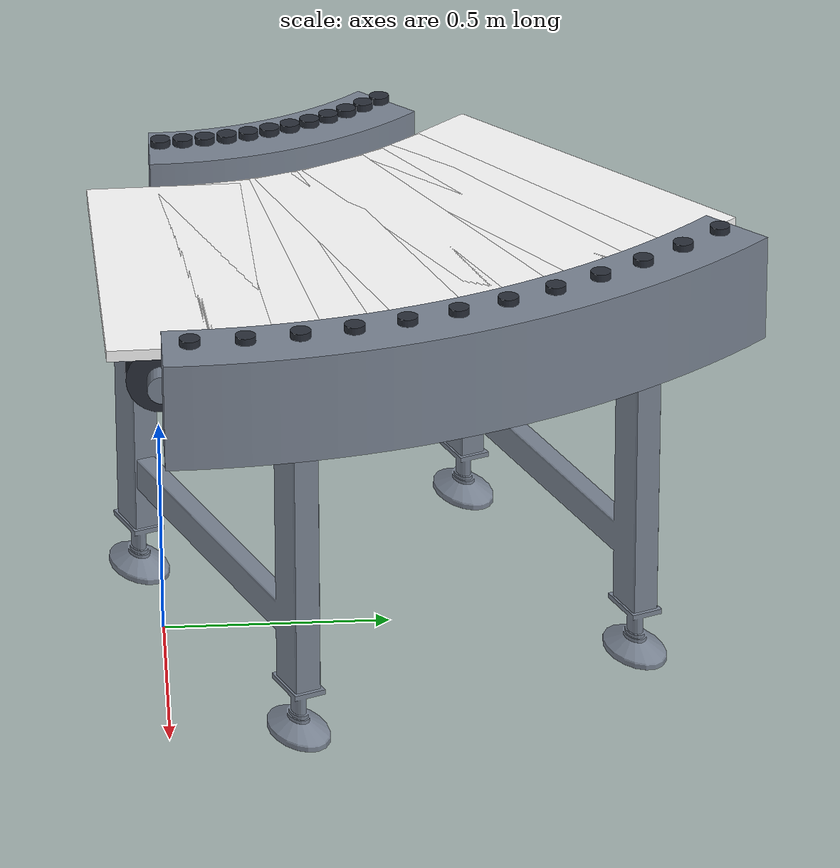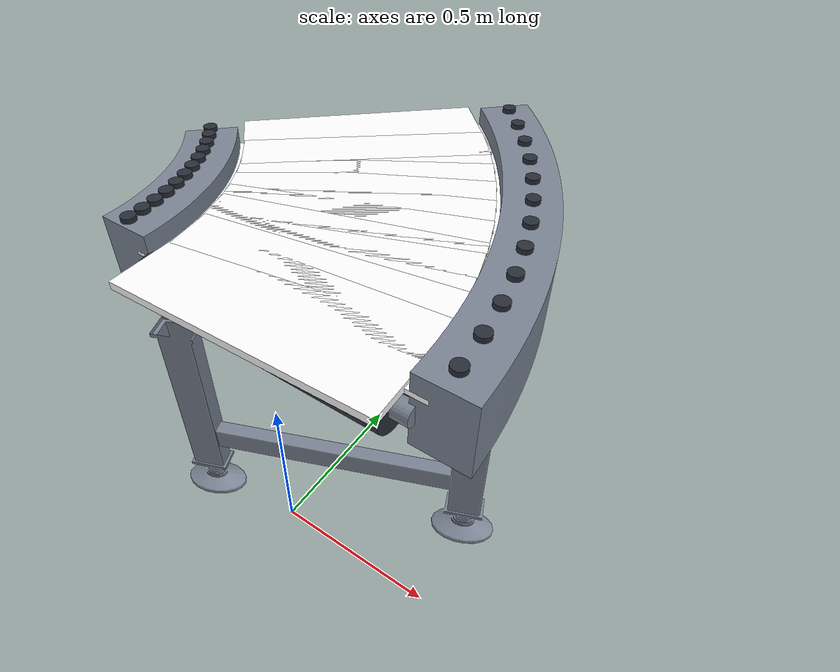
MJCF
<mujoco model="conveyor_curve_left_45">
  <!-- Generated by generate.mjs. Edit the generator rather than this file. -->
  <compiler angle="radian" meshdir="meshes" texturedir="textures"/>
  <option timestep="0.002"/>

  <asset>
    <material name="conveyor_frame_mat" rgba="0.48 0.52 0.58 1" metallic="0.72" roughness="0.28"/>
    <material name="conveyor_hardware_mat" rgba="0.16 0.18 0.22 1" metallic="0.82" roughness="0.24"/>
    <texture name="belt_color" type="2d" file="rubber-color.png"/>
    <texture name="belt_normal" type="2d" file="rubber-normal.png"/>
    <texture name="belt_roughness" type="2d" file="rubber-roughness.png"/>
    <material name="conveyor_belt_mat" rgba="1 1 1 1" metallic="0" roughness="1">
      <layer role="rgb" texture="belt_color"/>
      <layer role="normal" texture="belt_normal"/>
      <layer role="roughness" texture="belt_roughness"/>
    </material>
    <mesh name="conveyor_curve_inner_rail_visual" file="curve-left-45-inner-rail.obj" inertia="shell"/>
    <mesh name="conveyor_curve_outer_rail_visual" file="curve-left-45-outer-rail.obj" inertia="shell"/>
    <mesh name="conveyor_curve_belt_underlay_visual" file="curve-left-45-belt-underlay.obj" inertia="shell"/>
    <mesh name="conveyor_curve_belt_tile" file="belt-curve-tile.obj" inertia="shell"/>
    <mesh name="conveyor_curve_belt_end_tile" file="belt-curve-end-tile.obj" inertia="shell"/>
    <mesh name="conveyor_curve_support_visual"
          file="curve-support-short.obj" inertia="shell"/>
  </asset>

  <worldbody>
    <body name="conveyor_curve_left_45" pos="0 0 0">
      <!-- The incoming connection is centered at the origin and points along local +Y. -->
      <geom name="conveyor_curve_belt_underlay_visual" type="mesh" mesh="conveyor_curve_belt_underlay_visual"
            material="conveyor_belt_mat" group="1" contype="0" conaffinity="0" mass="0"/>
      <geom name="conveyor_curve_inner_rail_visual" type="mesh" mesh="conveyor_curve_inner_rail_visual"
            material="conveyor_frame_mat" group="1" contype="0" conaffinity="0" mass="0"/>
      <geom name="conveyor_curve_outer_rail_visual" type="mesh" mesh="conveyor_curve_outer_rail_visual"
            material="conveyor_frame_mat" group="1" contype="0" conaffinity="0" mass="0"/>
      <!-- Connection frames use local +Y as belt travel for drag-to-attach placement. -->
      <site name="attachment_site" pos="0 0 0.88" xyaxes="1 0 0 0 1 0" size="0.035" group="4"/>
      <site name="attachment_site_outlet" pos="-0.366116524 0.883883476 0.88"
            xyaxes="0.707106781 0.707106781 0 -0.707106781 0.707106781 0" size="0.035" group="4"/>

      <!-- Driven roller and end caps make each curve interface read as a real conveyor transition. -->
      <geom name="conveyor_curve_inlet_roller" type="cylinder" fromto="-0.405 0 0.81 0.405 0 0.81" size="0.075"
            material="conveyor_hardware_mat" group="1" contype="0" conaffinity="0" mass="0"/>
      <geom name="conveyor_curve_inlet_roller_caps" type="cylinder" fromto="-0.455 0 0.81 0.455 0 0.81" size="0.031"
            material="conveyor_frame_mat" group="1" contype="0" conaffinity="0" mass="0"/>
      <!-- Driven roller and end caps make each curve interface read as a real conveyor transition. -->
      <geom name="conveyor_curve_outlet_roller" type="cylinder" fromto="-0.639769393 0.610230607 0.81 -0.067012901 1.182987099 0.81" size="0.075"
            material="conveyor_hardware_mat" group="1" contype="0" conaffinity="0" mass="0"/>
      <geom name="conveyor_curve_outlet_roller_caps" type="cylinder" fromto="-0.675124732 0.574875268 0.81 -0.031657562 1.218342438 0.81" size="0.031"
            material="conveyor_frame_mat" group="1" contype="0" conaffinity="0" mass="0"/>

      <!-- Reuse the straight conveyor's finished, adjustable-leg support assembly. -->
      <geom name="conveyor_curve_support_visual" type="mesh" mesh="conveyor_curve_support_visual"
            pos="-0.078524079 0.485241215 0" quat="0.98078528 0 0 0.195090322" material="conveyor_frame_mat"
            group="1" contype="0" conaffinity="0" mass="0"/>

      <!-- Fasteners along both guard rails give the curve the same manufactured detail as the straight modules. -->
      <geom name="conveyor_curve_inner_fastener_0" type="cylinder" pos="-0.487412118 0.024964542 0.955" size="0.022 0.008"
            material="conveyor_hardware_mat" group="1" contype="0" conaffinity="0" mass="0"/>
      <geom name="conveyor_curve_outer_fastener_0" type="cylinder" pos="0.522047116 0.058010816 0.955" size="0.022 0.008"
            material="conveyor_hardware_mat" group="1" contype="0" conaffinity="0" mass="0"/>
      <geom name="conveyor_curve_inner_fastener_1" type="cylinder" pos="-0.490677636 0.074786725 0.955" size="0.022 0.008"
            material="conveyor_hardware_mat" group="1" contype="0" conaffinity="0" mass="0"/>
      <geom name="conveyor_curve_outer_fastener_1" type="cylinder" pos="0.514458938 0.173784037 0.955" size="0.022 0.008"
            material="conveyor_hardware_mat" group="1" contype="0" conaffinity="0" mass="0"/>
      <geom name="conveyor_curve_inner_fastener_2" type="cylinder" pos="-0.49719469 0.12428866 0.955" size="0.022 0.008"
            material="conveyor_hardware_mat" group="1" contype="0" conaffinity="0" mass="0"/>
      <geom name="conveyor_curve_outer_fastener_2" type="cylinder" pos="0.499315076 0.288813088 0.955" size="0.022 0.008"
            material="conveyor_hardware_mat" group="1" contype="0" conaffinity="0" mass="0"/>
      <geom name="conveyor_curve_inner_fastener_3" type="cylinder" pos="-0.506935371 0.173258371 0.955" size="0.022 0.008"
            material="conveyor_hardware_mat" group="1" contype="0" conaffinity="0" mass="0"/>
      <geom name="conveyor_curve_outer_fastener_3" type="cylinder" pos="0.476680378 0.402605397 0.955" size="0.022 0.008"
            material="conveyor_hardware_mat" group="1" contype="0" conaffinity="0" mass="0"/>
      <geom name="conveyor_curve_inner_fastener_4" type="cylinder" pos="-0.519857969 0.221486164 0.955" size="0.022 0.008"
            material="conveyor_hardware_mat" group="1" contype="0" conaffinity="0" mass="0"/>
      <geom name="conveyor_curve_outer_fastener_4" type="cylinder" pos="0.44665177 0.514673688 0.955" size="0.022 0.008"
            material="conveyor_hardware_mat" group="1" contype="0" conaffinity="0" mass="0"/>
      <geom name="conveyor_curve_inner_fastener_5" type="cylinder" pos="-0.535907147 0.268765518 0.955" size="0.022 0.008"
            material="conveyor_hardware_mat" group="1" contype="0" conaffinity="0" mass="0"/>
      <geom name="conveyor_curve_outer_fastener_5" type="cylinder" pos="0.409357839 0.624538067 0.955" size="0.022 0.008"
            material="conveyor_hardware_mat" group="1" contype="0" conaffinity="0" mass="0"/>
      <geom name="conveyor_curve_inner_fastener_6" type="cylinder" pos="-0.555014181 0.314893978 0.955" size="0.022 0.008"
            material="conveyor_hardware_mat" group="1" contype="0" conaffinity="0" mass="0"/>
      <geom name="conveyor_curve_outer_fastener_6" type="cylinder" pos="0.364958282 0.731728078 0.955" size="0.022 0.008"
            material="conveyor_hardware_mat" group="1" contype="0" conaffinity="0" mass="0"/>
      <geom name="conveyor_curve_inner_fastener_7" type="cylinder" pos="-0.57709725 0.359674013 0.955" size="0.022 0.008"
            material="conveyor_hardware_mat" group="1" contype="0" conaffinity="0" mass="0"/>
      <geom name="conveyor_curve_outer_fastener_7" type="cylinder" pos="0.313643227 0.835784717 0.955" size="0.022 0.008"
            material="conveyor_hardware_mat" group="1" contype="0" conaffinity="0" mass="0"/>
      <geom name="conveyor_curve_inner_fastener_8" type="cylinder" pos="-0.602061793 0.402913869 0.955" size="0.022 0.008"
            material="conveyor_hardware_mat" group="1" contype="0" conaffinity="0" mass="0"/>
      <geom name="conveyor_curve_outer_fastener_8" type="cylinder" pos="0.255632411 0.936262398 0.955" size="0.022 0.008"
            material="conveyor_hardware_mat" group="1" contype="0" conaffinity="0" mass="0"/>
      <geom name="conveyor_curve_inner_fastener_9" type="cylinder" pos="-0.629800906 0.444428386 0.955" size="0.022 0.008"
            material="conveyor_hardware_mat" group="1" contype="0" conaffinity="0" mass="0"/>
      <geom name="conveyor_curve_outer_fastener_9" type="cylinder" pos="0.191174246 1.03273086 0.955" size="0.022 0.008"
            material="conveyor_hardware_mat" group="1" contype="0" conaffinity="0" mass="0"/>
      <geom name="conveyor_curve_inner_fastener_10" type="cylinder" pos="-0.660195807 0.484039792 0.955" size="0.022 0.008"
            material="conveyor_hardware_mat" group="1" contype="0" conaffinity="0" mass="0"/>
      <geom name="conveyor_curve_outer_fastener_10" type="cylinder" pos="0.120544751 1.124777009 0.955" size="0.022 0.008"
            material="conveyor_hardware_mat" group="1" contype="0" conaffinity="0" mass="0"/>
      <geom name="conveyor_curve_inner_fastener_11" type="cylinder" pos="-0.69311634 0.521578466 0.955" size="0.022 0.008"
            material="conveyor_hardware_mat" group="1" contype="0" conaffinity="0" mass="0"/>
      <geom name="conveyor_curve_outer_fastener_11" type="cylinder" pos="0.044046373 1.212006691 0.955" size="0.022 0.008"
            material="conveyor_hardware_mat" group="1" contype="0" conaffinity="0" mass="0"/>

      <!-- Overlapping tangent boxes approximate stable curved frame and rail collision. -->
      <geom name="conveyor_curve_frame_collision_0" type="box"
            pos="0.017317499 0.041487679 0.35" quat="0.999866138 0 0 0.016361732"
            size="0.52 0.085235363 0.35" group="3" rgba="0 0 0 0" contype="1" conaffinity="0" density="31.5085"/>
      <geom name="conveyor_curve_inner_rail_collision_0" type="box"
            pos="-0.492409441 0.024800947 0.82" quat="0.999866138 0 0 0.016361732"
            size="0.09 0.085235363 0.12" group="3" rgba="0 0 0 0" contype="1" conaffinity="0" density="31.5085"/>
      <geom name="conveyor_curve_outer_rail_collision_0" type="box"
            pos="0.527044438 0.058174411 0.82" quat="0.999866138 0 0 0.016361732"
            size="0.09 0.085235363 0.12" group="3" rgba="0 0 0 0" contype="1" conaffinity="0" density="31.5085"/>
      <geom name="conveyor_curve_frame_collision_1" type="box"
            pos="0.011890651 0.124285381 0.35" quat="0.998795456 0 0 0.049067674"
            size="0.52 0.085235363 0.35" group="3" rgba="0 0 0 0" contype="1" conaffinity="0" density="31.5085"/>
      <geom name="conveyor_curve_inner_rail_collision_1" type="box"
            pos="-0.49565356 0.07429664 0.82" quat="0.998795456 0 0 0.049067674"
            size="0.09 0.085235363 0.12" group="3" rgba="0 0 0 0" contype="1" conaffinity="0" density="31.5085"/>
      <geom name="conveyor_curve_outer_rail_collision_1" type="box"
            pos="0.519434861 0.174274123 0.82" quat="0.998795456 0 0 0.049067674"
            size="0.09 0.085235363 0.12" group="3" rgba="0 0 0 0" contype="1" conaffinity="0" density="31.5085"/>
      <geom name="conveyor_curve_frame_collision_2" type="box"
            pos="0.001060193 0.206550874 0.35" quat="0.996655239 0 0 0.081721074"
            size="0.52 0.085235363 0.35" group="3" rgba="0 0 0 0" contype="1" conaffinity="0" density="31.5085"/>
      <geom name="conveyor_curve_inner_rail_collision_2" type="box"
            pos="-0.502127906 0.123474182 0.82" quat="0.996655239 0 0 0.081721074"
            size="0.09 0.085235363 0.12" group="3" rgba="0 0 0 0" contype="1" conaffinity="0" density="31.5085"/>
      <geom name="conveyor_curve_outer_rail_collision_2" type="box"
            pos="0.504248293 0.289627565 0.82" quat="0.996655239 0 0 0.081721074"
            size="0.09 0.085235363 0.12" group="3" rgba="0 0 0 0" contype="1" conaffinity="0" density="31.5085"/>
      <geom name="conveyor_curve_frame_collision_3" type="box"
            pos="-0.015127496 0.287931884 0.35" quat="0.993447779 0 0 0.114286965"
            size="0.52 0.085235363 0.35" group="3" rgba="0 0 0 0" contype="1" conaffinity="0" density="31.5085"/>
      <geom name="conveyor_curve_inner_rail_collision_3" type="box"
            pos="-0.511804756 0.17212299 0.82" quat="0.993447779 0 0 0.114286965"
            size="0.09 0.085235363 0.12" group="3" rgba="0 0 0 0" contype="1" conaffinity="0" density="31.5085"/>
      <geom name="conveyor_curve_outer_rail_collision_3" type="box"
            pos="0.481549763 0.403740778 0.82" quat="0.993447779 0 0 0.114286965"
            size="0.09 0.085235363 0.12" group="3" rgba="0 0 0 0" contype="1" conaffinity="0" density="31.5085"/>
      <geom name="conveyor_curve_frame_collision_4" type="box"
            pos="-0.036603099 0.368079926 0.35" quat="0.98917651 0 0 0.146730474"
            size="0.52 0.085235363 0.35" group="3" rgba="0 0 0 0" contype="1" conaffinity="0" density="31.5085"/>
      <geom name="conveyor_curve_inner_rail_collision_4" type="box"
            pos="-0.524642671 0.22003474 0.82" quat="0.98917651 0 0 0.146730474"
            size="0.09 0.085235363 0.12" group="3" rgba="0 0 0 0" contype="1" conaffinity="0" density="31.5085"/>
      <geom name="conveyor_curve_outer_rail_collision_4" type="box"
            pos="0.451436472 0.516125111 0.82" quat="0.98917651 0 0 0.146730474"
            size="0.09 0.085235363 0.12" group="3" rgba="0 0 0 0" contype="1" conaffinity="0" density="31.5085"/>
      <geom name="conveyor_curve_frame_collision_5" type="box"
            pos="-0.063274654 0.446651793 0.35" quat="0.983846006 0 0 0.179016861"
            size="0.52 0.085235363 0.35" group="3" rgba="0 0 0 0" contype="1" conaffinity="0" density="31.5085"/>
      <geom name="conveyor_curve_inner_rail_collision_5" type="box"
            pos="-0.540586677 0.267004268 0.82" quat="0.983846006 0 0 0.179016861"
            size="0.09 0.085235363 0.12" group="3" rgba="0 0 0 0" contype="1" conaffinity="0" density="31.5085"/>
      <geom name="conveyor_curve_outer_rail_collision_5" type="box"
            pos="0.414037369 0.626299317 0.82" quat="0.983846006 0 0 0.179016861"
            size="0.09 0.085235363 0.12" group="3" rgba="0 0 0 0" contype="1" conaffinity="0" density="31.5085"/>
      <geom name="conveyor_curve_frame_collision_6" type="box"
            pos="-0.095027949 0.523311028 0.35" quat="0.977461975 0 0 0.211111552"
            size="0.52 0.085235363 0.35" group="3" rgba="0 0 0 0" contype="1" conaffinity="0" density="31.5085"/>
      <geom name="conveyor_curve_inner_rail_collision_6" type="box"
            pos="-0.5595685 0.312830443 0.82" quat="0.977461975 0 0 0.211111552"
            size="0.09 0.085235363 0.12" group="3" rgba="0 0 0 0" contype="1" conaffinity="0" density="31.5085"/>
      <geom name="conveyor_curve_outer_rail_collision_6" type="box"
            pos="0.369512602 0.733791613 0.82" quat="0.977461975 0 0 0.211111552"
            size="0.09 0.085235363 0.12" group="3" rgba="0 0 0 0" contype="1" conaffinity="0" density="31.5085"/>
      <geom name="conveyor_curve_frame_collision_7" type="box"
            pos="-0.131727012 0.597729365 0.35" quat="0.970031253 0 0 0.24298018"
            size="0.52 0.085235363 0.35" group="3" rgba="0 0 0 0" contype="1" conaffinity="0" density="31.5085"/>
      <geom name="conveyor_curve_inner_rail_collision_7" type="box"
            pos="-0.581506857 0.357317029 0.82" quat="0.970031253 0 0 0.24298018"
            size="0.09 0.085235363 0.12" group="3" rgba="0 0 0 0" contype="1" conaffinity="0" density="31.5085"/>
      <geom name="conveyor_curve_outer_rail_collision_7" type="box"
            pos="0.318052833 0.838141701 0.82" quat="0.970031253 0 0 0.24298018"
            size="0.09 0.085235363 0.12" group="3" rgba="0 0 0 0" contype="1" conaffinity="0" density="31.5085"/>
      <geom name="conveyor_curve_frame_collision_8" type="box"
            pos="-0.173214691 0.669588134 0.35" quat="0.961561798 0 0 0.274588618"
            size="0.52 0.085235363 0.35" group="3" rgba="0 0 0 0" contype="1" conaffinity="0" density="31.5085"/>
      <geom name="conveyor_curve_inner_rail_collision_8" type="box"
            pos="-0.606307804 0.40027353 0.82" quat="0.961561798 0 0 0.274588618"
            size="0.09 0.085235363 0.12" group="3" rgba="0 0 0 0" contype="1" conaffinity="0" density="31.5085"/>
      <geom name="conveyor_curve_outer_rail_collision_8" type="box"
            pos="0.259878422 0.938902737 0.82" quat="0.961561798 0 0 0.274588618"
            size="0.09 0.085235363 0.12" group="3" rgba="0 0 0 0" contype="1" conaffinity="0" density="31.5085"/>
      <geom name="conveyor_curve_frame_collision_9" type="box"
            pos="-0.21931333 0.738579623 0.35" quat="0.952062678 0 0 0.30590302"
            size="0.52 0.085235363 0.35" group="3" rgba="0 0 0 0" contype="1" conaffinity="0" density="31.5085"/>
      <geom name="conveyor_curve_inner_rail_collision_9" type="box"
            pos="-0.633865139 0.441515997 0.82" quat="0.952062678 0 0 0.30590302"
            size="0.09 0.085235363 0.12" group="3" rgba="0 0 0 0" contype="1" conaffinity="0" density="31.5085"/>
      <geom name="conveyor_curve_outer_rail_collision_9" type="box"
            pos="0.195238479 1.035643248 0.82" quat="0.952062678 0 0 0.30590302"
            size="0.09 0.085235363 0.12" group="3" rgba="0 0 0 0" contype="1" conaffinity="0" density="31.5085"/>
      <geom name="conveyor_curve_frame_collision_10" type="box"
            pos="-0.269825528 0.804408401 0.35" quat="0.941544065 0 0 0.336889853"
            size="0.52 0.085235363 0.35" group="3" rgba="0 0 0 0" contype="1" conaffinity="0" density="31.5085"/>
      <geom name="conveyor_curve_inner_rail_collision_10" type="box"
            pos="-0.664060859 0.480867826 0.82" quat="0.941544065 0 0 0.336889853"
            size="0.09 0.085235363 0.12" group="3" rgba="0 0 0 0" contype="1" conaffinity="0" density="31.5085"/>
      <geom name="conveyor_curve_outer_rail_collision_10" type="box"
            pos="0.124409803 1.127948975 0.82" quat="0.941544065 0 0 0.336889853"
            size="0.09 0.085235363 0.12" group="3" rgba="0 0 0 0" contype="1" conaffinity="0" density="31.5085"/>
      <geom name="conveyor_curve_frame_collision_11" type="box"
            pos="-0.324534983 0.866792578 0.35" quat="0.930017224 0 0 0.367515937"
            size="0.52 0.085235363 0.35" group="3" rgba="0 0 0 0" contype="1" conaffinity="0" density="31.5085"/>
      <geom name="conveyor_curve_inner_rail_collision_11" type="box"
            pos="-0.69676566 0.518160504 0.82" quat="0.930017224 0 0 0.367515937"
            size="0.09 0.085235363 0.12" group="3" rgba="0 0 0 0" contype="1" conaffinity="0" density="31.5085"/>
      <geom name="conveyor_curve_outer_rail_collision_11" type="box"
            pos="0.047695694 1.215424652 0.82" quat="0.930017224 0 0 0.367515937"
            size="0.09 0.085235363 0.12" group="3" rgba="0 0 0 0" contype="1" conaffinity="0" density="31.5085"/>

      <!-- Tangent-aligned moving contact tiles steer objects continuously through the turn. -->
      <body name="conveyor_belt_segment_0" pos="0.017317499 0.041487679 0.88" quat="0.999866138 0 0 0.016361732">
        <joint name="conveyor_belt_segment_0_slide" type="slide" axis="0 1 0"
               range="-0.05 0.05" limited="false" damping="0"/>
        <geom name="conveyor_belt_segment_0_contact" type="box"
              size="0.39 0.169211827 0.0125" group="3" contype="1" conaffinity="2"
              rgba="0 0 0 0" condim="6" friction="1.8 0.08 0.02"
              solimp="0.9 0.98 0.0001" solref="0.002 1" mass="0.00063017"/>
        <!-- The visible tread shares this moving MuJoCo body with its contact tile. -->
        <geom name="conveyor_belt_segment_0_visual" type="mesh" mesh="conveyor_curve_belt_end_tile"
              material="conveyor_belt_mat" group="1" contype="0" conaffinity="0" mass="0"/>
      </body>
      <body name="conveyor_belt_segment_1" pos="0.011890651 0.124285381 0.88" quat="0.998795456 0 0 0.049067674">
        <joint name="conveyor_belt_segment_1_slide" type="slide" axis="0 1 0"
               range="-0.05 0.05" limited="false" damping="0"/>
        <geom name="conveyor_belt_segment_1_contact" type="box"
              size="0.39 0.079211827 0.0125" group="3" contype="1" conaffinity="2"
              rgba="0 0 0 0" condim="6" friction="1.8 0.08 0.02"
              solimp="0.9 0.98 0.0001" solref="0.002 1" mass="0.00063017"/>
        <!-- The visible tread shares this moving MuJoCo body with its contact tile. -->
        <geom name="conveyor_belt_segment_1_visual" type="mesh" mesh="conveyor_curve_belt_tile"
              material="conveyor_belt_mat" group="1" contype="0" conaffinity="0" mass="0"/>
      </body>
      <body name="conveyor_belt_segment_2" pos="0.001060193 0.206550874 0.88" quat="0.996655239 0 0 0.081721074">
        <joint name="conveyor_belt_segment_2_slide" type="slide" axis="0 1 0"
               range="-0.05 0.05" limited="false" damping="0"/>
        <geom name="conveyor_belt_segment_2_contact" type="box"
              size="0.39 0.079211827 0.0125" group="3" contype="1" conaffinity="2"
              rgba="0 0 0 0" condim="6" friction="1.8 0.08 0.02"
              solimp="0.9 0.98 0.0001" solref="0.002 1" mass="0.00063017"/>
        <!-- The visible tread shares this moving MuJoCo body with its contact tile. -->
        <geom name="conveyor_belt_segment_2_visual" type="mesh" mesh="conveyor_curve_belt_tile"
              material="conveyor_belt_mat" group="1" contype="0" conaffinity="0" mass="0"/>
      </body>
      <body name="conveyor_belt_segment_3" pos="-0.015127496 0.287931884 0.88" quat="0.993447779 0 0 0.114286965">
        <joint name="conveyor_belt_segment_3_slide" type="slide" axis="0 1 0"
               range="-0.05 0.05" limited="false" damping="0"/>
        <geom name="conveyor_belt_segment_3_contact" type="box"
              size="0.39 0.079211827 0.0125" group="3" contype="1" conaffinity="2"
              rgba="0 0 0 0" condim="6" friction="1.8 0.08 0.02"
              solimp="0.9 0.98 0.0001" solref="0.002 1" mass="0.00063017"/>
        <!-- The visible tread shares this moving MuJoCo body with its contact tile. -->
        <geom name="conveyor_belt_segment_3_visual" type="mesh" mesh="conveyor_curve_belt_tile"
              material="conveyor_belt_mat" group="1" contype="0" conaffinity="0" mass="0"/>
      </body>
      <body name="conveyor_belt_segment_4" pos="-0.036603099 0.368079926 0.88" quat="0.98917651 0 0 0.146730474">
        <joint name="conveyor_belt_segment_4_slide" type="slide" axis="0 1 0"
               range="-0.05 0.05" limited="false" damping="0"/>
        <geom name="conveyor_belt_segment_4_contact" type="box"
              size="0.39 0.079211827 0.0125" group="3" contype="1" conaffinity="2"
              rgba="0 0 0 0" condim="6" friction="1.8 0.08 0.02"
              solimp="0.9 0.98 0.0001" solref="0.002 1" mass="0.00063017"/>
        <!-- The visible tread shares this moving MuJoCo body with its contact tile. -->
        <geom name="conveyor_belt_segment_4_visual" type="mesh" mesh="conveyor_curve_belt_tile"
              material="conveyor_belt_mat" group="1" contype="0" conaffinity="0" mass="0"/>
      </body>
      <body name="conveyor_belt_segment_5" pos="-0.063274654 0.446651793 0.88" quat="0.983846006 0 0 0.179016861">
        <joint name="conveyor_belt_segment_5_slide" type="slide" axis="0 1 0"
               range="-0.05 0.05" limited="false" damping="0"/>
        <geom name="conveyor_belt_segment_5_contact" type="box"
              size="0.39 0.079211827 0.0125" group="3" contype="1" conaffinity="2"
              rgba="0 0 0 0" condim="6" friction="1.8 0.08 0.02"
              solimp="0.9 0.98 0.0001" solref="0.002 1" mass="0.00063017"/>
        <!-- The visible tread shares this moving MuJoCo body with its contact tile. -->
        <geom name="conveyor_belt_segment_5_visual" type="mesh" mesh="conveyor_curve_belt_tile"
              material="conveyor_belt_mat" group="1" contype="0" conaffinity="0" mass="0"/>
      </body>
      <body name="conveyor_belt_segment_6" pos="-0.095027949 0.523311028 0.88" quat="0.977461975 0 0 0.211111552">
        <joint name="conveyor_belt_segment_6_slide" type="slide" axis="0 1 0"
               range="-0.05 0.05" limited="false" damping="0"/>
        <geom name="conveyor_belt_segment_6_contact" type="box"
              size="0.39 0.079211827 0.0125" group="3" contype="1" conaffinity="2"
              rgba="0 0 0 0" condim="6" friction="1.8 0.08 0.02"
              solimp="0.9 0.98 0.0001" solref="0.002 1" mass="0.00063017"/>
        <!-- The visible tread shares this moving MuJoCo body with its contact tile. -->
        <geom name="conveyor_belt_segment_6_visual" type="mesh" mesh="conveyor_curve_belt_tile"
              material="conveyor_belt_mat" group="1" contype="0" conaffinity="0" mass="0"/>
      </body>
      <body name="conveyor_belt_segment_7" pos="-0.131727012 0.597729365 0.88" quat="0.970031253 0 0 0.24298018">
        <joint name="conveyor_belt_segment_7_slide" type="slide" axis="0 1 0"
               range="-0.05 0.05" limited="false" damping="0"/>
        <geom name="conveyor_belt_segment_7_contact" type="box"
              size="0.39 0.079211827 0.0125" group="3" contype="1" conaffinity="2"
              rgba="0 0 0 0" condim="6" friction="1.8 0.08 0.02"
              solimp="0.9 0.98 0.0001" solref="0.002 1" mass="0.00063017"/>
        <!-- The visible tread shares this moving MuJoCo body with its contact tile. -->
        <geom name="conveyor_belt_segment_7_visual" type="mesh" mesh="conveyor_curve_belt_tile"
              material="conveyor_belt_mat" group="1" contype="0" conaffinity="0" mass="0"/>
      </body>
      <body name="conveyor_belt_segment_8" pos="-0.173214691 0.669588134 0.88" quat="0.961561798 0 0 0.274588618">
        <joint name="conveyor_belt_segment_8_slide" type="slide" axis="0 1 0"
               range="-0.05 0.05" limited="false" damping="0"/>
        <geom name="conveyor_belt_segment_8_contact" type="box"
              size="0.39 0.079211827 0.0125" group="3" contype="1" conaffinity="2"
              rgba="0 0 0 0" condim="6" friction="1.8 0.08 0.02"
              solimp="0.9 0.98 0.0001" solref="0.002 1" mass="0.00063017"/>
        <!-- The visible tread shares this moving MuJoCo body with its contact tile. -->
        <geom name="conveyor_belt_segment_8_visual" type="mesh" mesh="conveyor_curve_belt_tile"
              material="conveyor_belt_mat" group="1" contype="0" conaffinity="0" mass="0"/>
      </body>
      <body name="conveyor_belt_segment_9" pos="-0.21931333 0.738579623 0.88" quat="0.952062678 0 0 0.30590302">
        <joint name="conveyor_belt_segment_9_slide" type="slide" axis="0 1 0"
               range="-0.05 0.05" limited="false" damping="0"/>
        <geom name="conveyor_belt_segment_9_contact" type="box"
              size="0.39 0.079211827 0.0125" group="3" contype="1" conaffinity="2"
              rgba="0 0 0 0" condim="6" friction="1.8 0.08 0.02"
              solimp="0.9 0.98 0.0001" solref="0.002 1" mass="0.00063017"/>
        <!-- The visible tread shares this moving MuJoCo body with its contact tile. -->
        <geom name="conveyor_belt_segment_9_visual" type="mesh" mesh="conveyor_curve_belt_tile"
              material="conveyor_belt_mat" group="1" contype="0" conaffinity="0" mass="0"/>
      </body>
      <body name="conveyor_belt_segment_10" pos="-0.269825528 0.804408401 0.88" quat="0.941544065 0 0 0.336889853">
        <joint name="conveyor_belt_segment_10_slide" type="slide" axis="0 1 0"
               range="-0.05 0.05" limited="false" damping="0"/>
        <geom name="conveyor_belt_segment_10_contact" type="box"
              size="0.39 0.079211827 0.0125" group="3" contype="1" conaffinity="2"
              rgba="0 0 0 0" condim="6" friction="1.8 0.08 0.02"
              solimp="0.9 0.98 0.0001" solref="0.002 1" mass="0.00063017"/>
        <!-- The visible tread shares this moving MuJoCo body with its contact tile. -->
        <geom name="conveyor_belt_segment_10_visual" type="mesh" mesh="conveyor_curve_belt_tile"
              material="conveyor_belt_mat" group="1" contype="0" conaffinity="0" mass="0"/>
      </body>
      <body name="conveyor_belt_segment_11" pos="-0.324534983 0.866792578 0.88" quat="0.930017224 0 0 0.367515937">
        <joint name="conveyor_belt_segment_11_slide" type="slide" axis="0 1 0"
               range="-0.05 0.05" limited="false" damping="0"/>
        <geom name="conveyor_belt_segment_11_contact" type="box"
              size="0.39 0.169211827 0.0125" group="3" contype="1" conaffinity="2"
              rgba="0 0 0 0" condim="6" friction="1.8 0.08 0.02"
              solimp="0.9 0.98 0.0001" solref="0.002 1" mass="0.00063017"/>
        <!-- The visible tread shares this moving MuJoCo body with its contact tile. -->
        <geom name="conveyor_belt_segment_11_visual" type="mesh" mesh="conveyor_curve_belt_end_tile"
              material="conveyor_belt_mat" group="1" contype="0" conaffinity="0" mass="0"/>
      </body>
    </body>
  </worldbody>

  <equality>
    <joint name="belt_eq_0_1" joint1="conveyor_belt_segment_0_slide" joint2="conveyor_belt_segment_1_slide" polycoef="0 1 0 0 0"/>
    <joint name="belt_eq_1_2" joint1="conveyor_belt_segment_1_slide" joint2="conveyor_belt_segment_2_slide" polycoef="0 1 0 0 0"/>
    <joint name="belt_eq_2_3" joint1="conveyor_belt_segment_2_slide" joint2="conveyor_belt_segment_3_slide" polycoef="0 1 0 0 0"/>
    <joint name="belt_eq_3_4" joint1="conveyor_belt_segment_3_slide" joint2="conveyor_belt_segment_4_slide" polycoef="0 1 0 0 0"/>
    <joint name="belt_eq_4_5" joint1="conveyor_belt_segment_4_slide" joint2="conveyor_belt_segment_5_slide" polycoef="0 1 0 0 0"/>
    <joint name="belt_eq_5_6" joint1="conveyor_belt_segment_5_slide" joint2="conveyor_belt_segment_6_slide" polycoef="0 1 0 0 0"/>
    <joint name="belt_eq_6_7" joint1="conveyor_belt_segment_6_slide" joint2="conveyor_belt_segment_7_slide" polycoef="0 1 0 0 0"/>
    <joint name="belt_eq_7_8" joint1="conveyor_belt_segment_7_slide" joint2="conveyor_belt_segment_8_slide" polycoef="0 1 0 0 0"/>
    <joint name="belt_eq_8_9" joint1="conveyor_belt_segment_8_slide" joint2="conveyor_belt_segment_9_slide" polycoef="0 1 0 0 0"/>
    <joint name="belt_eq_9_10" joint1="conveyor_belt_segment_9_slide" joint2="conveyor_belt_segment_10_slide" polycoef="0 1 0 0 0"/>
    <joint name="belt_eq_10_11" joint1="conveyor_belt_segment_10_slide" joint2="conveyor_belt_segment_11_slide" polycoef="0 1 0 0 0"/>
  </equality>

  <actuator>
    <velocity name="conveyor_speed" joint="conveyor_belt_segment_0_slide" ctrlrange="-1.5 1.5" kv="20"/>
  </actuator>
</mujoco>
